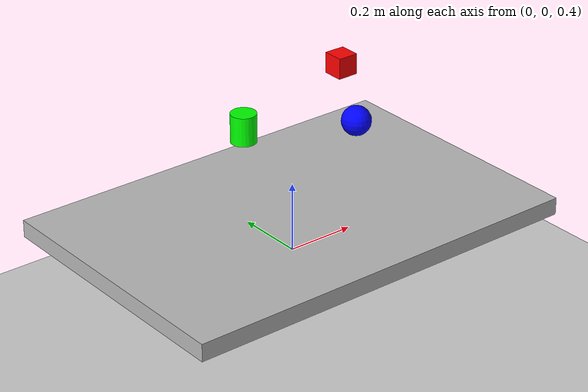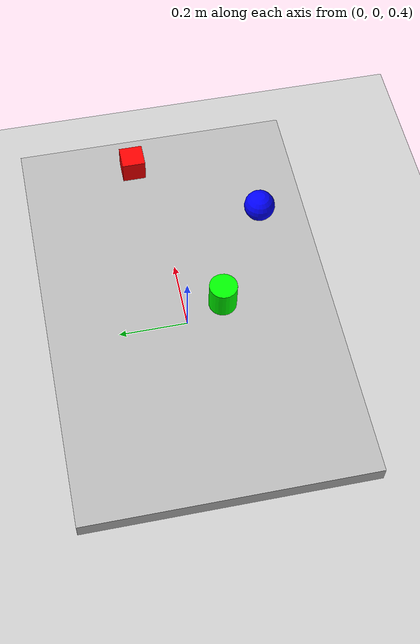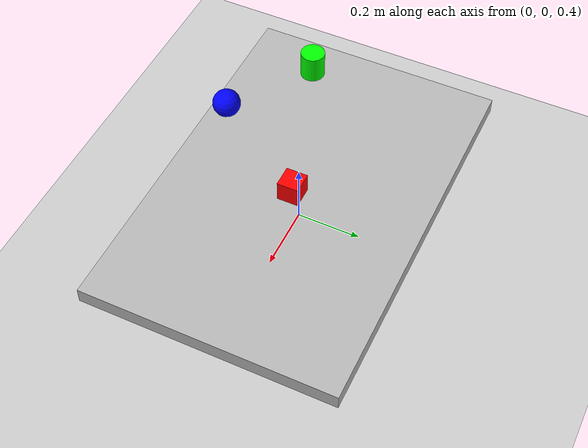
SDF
<sdf version="1.9">
 <world name="task_aware_world">
  <plugin filename="gz-sim-physics-system" name="gz::sim::systems::Physics"/>
  <plugin filename="gz-sim-sensors-system" name="gz::sim::systems::Sensors"/>
  <plugin filename="gz-sim-scene-broadcaster-system" name="gz::sim::systems::SceneBroadcaster"/>
  <plugin filename="gz-sim-user-commands-system" name="gz::sim::systems::UserCommands"/>
  <include><uri>https://fuel.gazebosim.org/1.0/OpenRobotics/models/Sun</uri></include>
  <scene><ambient>0.5 0.5 0.5 1</ambient><background>0.7 0.7 0.7 1</background></scene>
  <include><uri>https://fuel.gazebosim.org/1.0/OpenRobotics/models/Ground Plane</uri></include>
  <model name="table">
   <static>true</static>
   <link name="link">
    <pose>0 0 0.5 0 0 0</pose>
    <collision name="collision"><geometry><box><size>1.2 0.8 0.05</size></box></geometry></collision>
    <visual name="visual"><geometry><box><size>1.2 0.8 0.05</size></box></geometry></visual>
   </link>
  </model>
  <model name="fixed_camera">
   <static>true</static>
   <link name="camera_link">
    <pose>0 0 1.8 0 1.5708 0</pose>
    <sensor name="rgb_camera" type="camera">
     <always_on>true</always_on>
     <update_rate>15</update_rate>
     <visualize>true</visualize>
     <topic>/fixed_camera/rgb/image</topic>
     <camera>
      <horizontal_fov>1.047</horizontal_fov>
      <image><width>1280</width><height>720</height><format>R8G8B8</format></image>
      <clip><near>0.05</near><far>10</far></clip>
     </camera>
    </sensor>
   </link>
  </model>
  <model name="obj_red_cube">
   <static>false</static>
   <pose>0.25 0.10 0.85 0 0 0</pose>
   <link name="link">
    <inertial>
     <mass>0.2</mass>
     <inertia><ixx>0.0002</ixx><iyy>0.0002</iyy><izz>0.0002</izz><ixy>0</ixy><ixz>0</ixz><iyz>0</iyz></inertia>
    </inertial>
    <collision name="collision"><geometry><box><size>0.06 0.06 0.06</size></box></geometry></collision>
    <visual name="visual">
     <geometry><box><size>0.06 0.06 0.06</size></box></geometry>
     <material><ambient>1 0 0 1</ambient><diffuse>1 0 0 1</diffuse></material>
    </visual>
   </link>
  </model>
  <model name="obj_green_cyl">
   <static>false</static>
   <pose>-0.20 -0.05 0.85 0 0 0</pose>
   <link name="link">
    <inertial>
     <mass>0.2</mass>
     <inertia><ixx>0.00025</ixx><iyy>0.00025</iyy><izz>0.00010</izz><ixy>0</ixy><ixz>0</ixz><iyz>0</iyz></inertia>
    </inertial>
    <collision name="collision">
     <geometry><cylinder><radius>0.035</radius><length>0.08</length></cylinder></geometry>
    </collision>
    <visual name="visual">
     <geometry><cylinder><radius>0.035</radius><length>0.08</length></cylinder></geometry>
     <material><ambient>0 1 0 1</ambient><diffuse>0 1 0 1</diffuse></material>
    </visual>
   </link>
  </model>
  <model name="obj_blue_sphere">
   <static>false</static>
   <pose>0.05 -0.20 0.85 0 0 0</pose>
   <link name="link">
    <inertial>
     <mass>0.2</mass>
     <inertia><ixx>0.0002</ixx><iyy>0.0002</iyy><izz>0.0002</izz><ixy>0</ixy><ixz>0</ixz><iyz>0</iyz></inertia>
    </inertial>
    <collision name="collision"><geometry><sphere><radius>0.04</radius></sphere></geometry></collision>
    <visual name="visual">
     <geometry><sphere><radius>0.04</radius></sphere></geometry>
     <material><ambient>0 0 1 1</ambient><diffuse>0 0 1 1</diffuse></material>
    </visual>
   </link>
  </model>
 </world>
</sdf>
